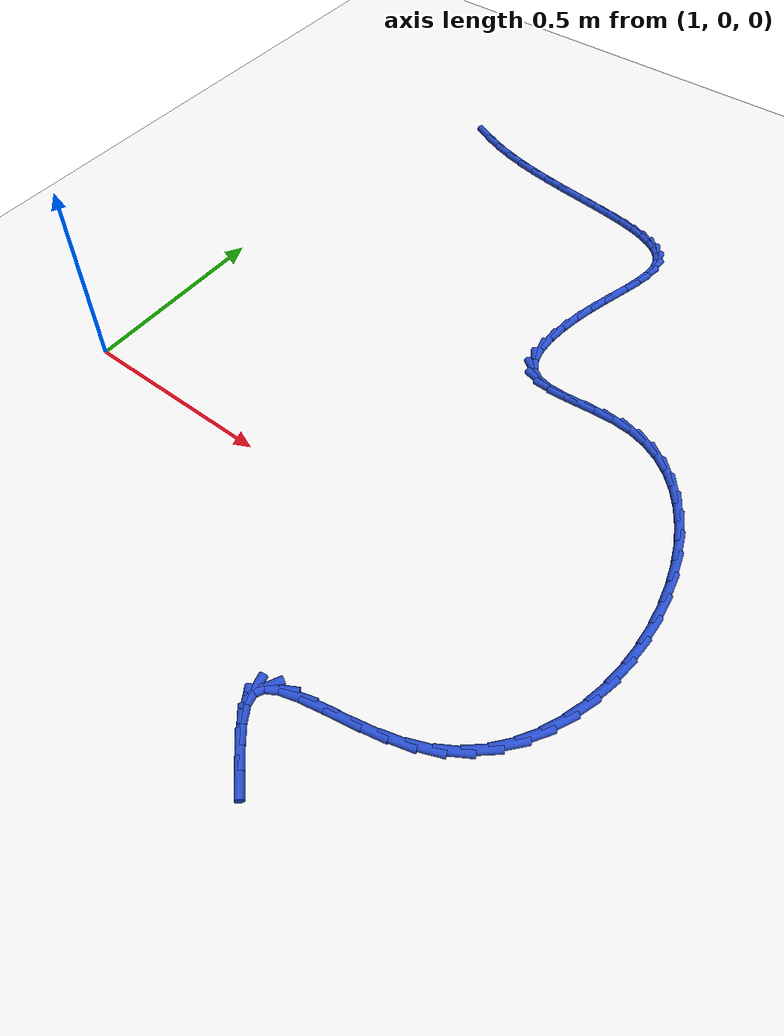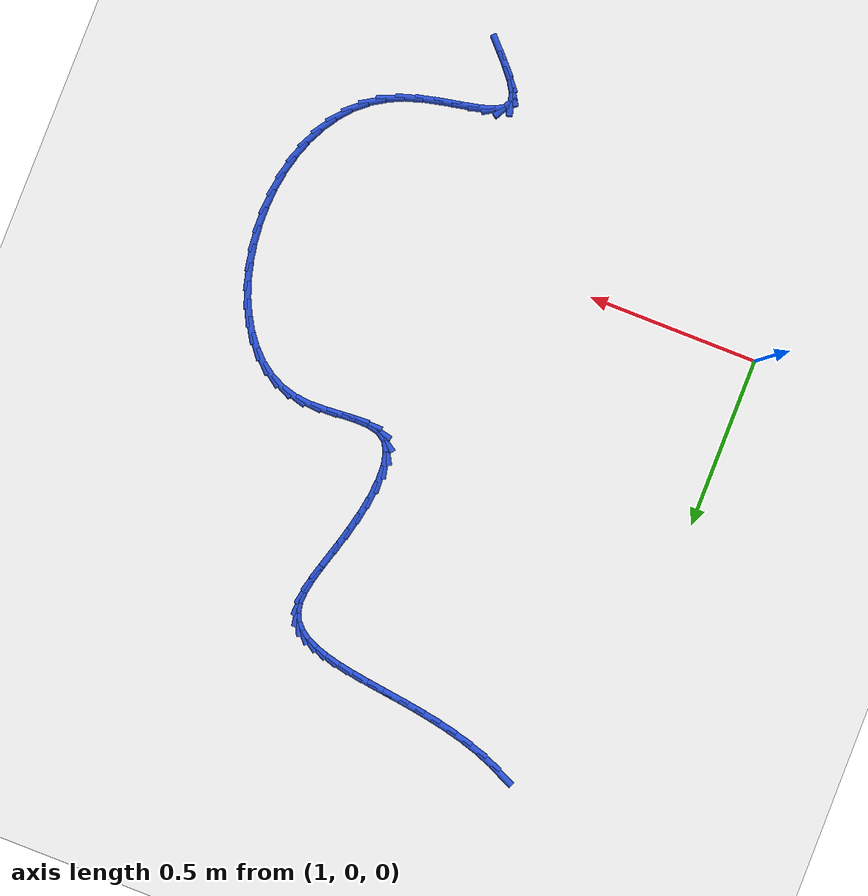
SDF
<sdf version="1.6">
 <world name="default">
  <model name="ground_plane">
   <static>1</static>
   <link name="link">
    <collision name="collision">
     <geometry><plane><normal>0 0 1</normal><size>100 100</size></plane></geometry>
     <surface><friction><ode><mu>100</mu><mu2>50</mu2></ode></friction></surface>
    </collision>
    <visual name="visual">
     <cast_shadows>0</cast_shadows>
     <geometry><plane><normal>0 0 1</normal><size>100 100</size></plane></geometry>
     <material>
      <script><uri>file://media/materials/scripts/gazebo.material</uri><name>Gazebo/WhiteGlow</name></script>
     </material>
    </visual>
   </link>
  </model>
  <model name="line">
   <link name="link_54">
    <pose>1.2487303190080101 1.3518922944200582 0.01 0 1.57 -0.43292029826082484</pose>
    <collision name="collision">
     <geometry><cylinder><radius>0.01</radius><length>0.08</length></cylinder></geometry>
    </collision>
    <visual name="visual">
     <material>
      <script><name>Gazebo/Blue</name><uri>file://media/materials/scripts/gazebo.material</uri></script>
     </material>
     <geometry><cylinder><radius>0.01</radius><length>0.08</length></cylinder></geometry>
    </visual>
   </link>
   <link name="link_55">
    <pose>1.2966925006008096 1.3297260778118267 0.01 0 1.57 -0.3538817943182508</pose>
    <collision name="collision">
     <geometry><cylinder><radius>0.01</radius><length>0.08</length></cylinder></geometry>
    </collision>
    <visual name="visual">
     <material>
      <script><name>Gazebo/Blue</name><uri>file://media/materials/scripts/gazebo.material</uri></script>
     </material>
     <geometry><cylinder><radius>0.01</radius><length>0.08</length></cylinder></geometry>
    </visual>
   </link>
   <link name="link_56">
    <pose>1.3466669813376237 1.3112638161789045 0.01 0 1.57 -0.2876853802730694</pose>
    <collision name="collision">
     <geometry><cylinder><radius>0.01</radius><length>0.08</length></cylinder></geometry>
    </collision>
    <visual name="visual">
     <material>
      <script><name>Gazebo/Blue</name><uri>file://media/materials/scripts/gazebo.material</uri></script>
     </material>
     <geometry><cylinder><radius>0.01</radius><length>0.08</length></cylinder></geometry>
    </visual>
   </link>
   <link name="link_57">
    <pose>1.3980941813938965 1.2960468273064274 0.01 0 1.57 -0.234372294279772</pose>
    <collision name="collision">
     <geometry><cylinder><radius>0.01</radius><length>0.08</length></cylinder></geometry>
    </collision>
    <visual name="visual">
     <material>
      <script><name>Gazebo/Blue</name><uri>file://media/materials/scripts/gazebo.material</uri></script>
     </material>
     <geometry><cylinder><radius>0.01</radius><length>0.08</length></cylinder></geometry>
    </visual>
   </link>
   <link name="link_58">
    <pose>1.450406076150996 1.2835568332873375 0.01 0 1.57 -0.1929256856500964</pose>
    <collision name="collision">
     <geometry><cylinder><radius>0.01</radius><length>0.08</length></cylinder></geometry>
    </collision>
    <visual name="visual">
     <material>
      <script><name>Gazebo/Blue</name><uri>file://media/materials/scripts/gazebo.material</uri></script>
     </material>
     <geometry><cylinder><radius>0.01</radius><length>0.08</length></cylinder></geometry>
    </visual>
   </link>
   <link name="link_59">
    <pose>1.5030346409902902 1.273275556214578 0.01 0 1.57 -0.16257110364568542</pose>
    <collision name="collision">
     <geometry><cylinder><radius>0.01</radius><length>0.08</length></cylinder></geometry>
    </collision>
    <visual name="visual">
     <material>
      <script><name>Gazebo/Blue</name><uri>file://media/materials/scripts/gazebo.material</uri></script>
     </material>
     <geometry><cylinder><radius>0.01</radius><length>0.08</length></cylinder></geometry>
    </visual>
   </link>
   <link name="link_60">
    <pose>1.5554118512931465 1.264684718181093 0.01 0 1.57 -0.14290949893314753</pose>
    <collision name="collision">
     <geometry><cylinder><radius>0.01</radius><length>0.08</length></cylinder></geometry>
    </collision>
    <visual name="visual">
     <material>
      <script><name>Gazebo/Blue</name><uri>file://media/materials/scripts/gazebo.material</uri></script>
     </material>
     <geometry><cylinder><radius>0.01</radius><length>0.08</length></cylinder></geometry>
    </visual>
   </link>
   <link name="link_61">
    <pose>1.6069696824409316 1.2572660412798244 0.01 0 1.57 -0.13402793256331727</pose>
    <collision name="collision">
     <geometry><cylinder><radius>0.01</radius><length>0.08</length></cylinder></geometry>
    </collision>
    <visual name="visual">
     <material>
      <script><name>Gazebo/Blue</name><uri>file://media/materials/scripts/gazebo.material</uri></script>
     </material>
     <geometry><cylinder><radius>0.01</radius><length>0.08</length></cylinder></geometry>
    </visual>
   </link>
   <link name="link_62">
    <pose>1.6571401098150127 1.2505012476037156 0.01 0 1.57 -0.13663554945352568</pose>
    <collision name="collision">
     <geometry><cylinder><radius>0.01</radius><length>0.08</length></cylinder></geometry>
    </collision>
    <visual name="visual">
     <material>
      <script><name>Gazebo/Blue</name><uri>file://media/materials/scripts/gazebo.material</uri></script>
     </material>
     <geometry><cylinder><radius>0.01</radius><length>0.08</length></cylinder></geometry>
    </visual>
   </link>
   <link name="link_63">
    <pose>1.705355108796759 1.2438720592457095 0.01 0 1.57 -0.15227285731366189</pose>
    <collision name="collision">
     <geometry><cylinder><radius>0.01</radius><length>0.08</length></cylinder></geometry>
    </collision>
    <visual name="visual">
     <material>
      <script><name>Gazebo/Blue</name><uri>file://media/materials/scripts/gazebo.material</uri></script>
     </material>
     <geometry><cylinder><radius>0.01</radius><length>0.08</length></cylinder></geometry>
    </visual>
   </link>
   <link name="link_64">
    <pose>1.7510466547675358 1.2368601982987497 0.01 0 1.57 -0.18365341744095673</pose>
    <collision name="collision">
     <geometry><cylinder><radius>0.01</radius><length>0.08</length></cylinder></geometry>
    </collision>
    <visual name="visual">
     <material>
      <script><name>Gazebo/Blue</name><uri>file://media/materials/scripts/gazebo.material</uri></script>
     </material>
     <geometry><cylinder><radius>0.01</radius><length>0.08</length></cylinder></geometry>
    </visual>
   </link>
   <link name="link_65">
    <pose>1.793646723108711 1.2289473868557783 0.01 0 1.57 -0.2352123937676256</pose>
    <collision name="collision">
     <geometry><cylinder><radius>0.01</radius><length>0.08</length></cylinder></geometry>
    </collision>
    <visual name="visual">
     <material>
      <script><name>Gazebo/Blue</name><uri>file://media/materials/scripts/gazebo.material</uri></script>
     </material>
     <geometry><cylinder><radius>0.01</radius><length>0.08</length></cylinder></geometry>
    </visual>
   </link>
   <link name="link_66">
    <pose>1.8325872892016535 1.2196153470097393 0.01 0 1.57 -0.31391420819106536</pose>
    <collision name="collision">
     <geometry><cylinder><radius>0.01</radius><length>0.08</length></cylinder></geometry>
    </collision>
    <visual name="visual">
     <material>
      <script><name>Gazebo/Blue</name><uri>file://media/materials/scripts/gazebo.material</uri></script>
     </material>
     <geometry><cylinder><radius>0.01</radius><length>0.08</length></cylinder></geometry>
    </visual>
   </link>
   <link name="link_67">
    <pose>1.8673003284277283 1.2083458008535752 0.01 0 1.57 -0.43012541419790107</pose>
    <collision name="collision">
     <geometry><cylinder><radius>0.01</radius><length>0.08</length></cylinder></geometry>
    </collision>
    <visual name="visual">
     <material>
      <script><name>Gazebo/Blue</name><uri>file://media/materials/scripts/gazebo.material</uri></script>
     </material>
     <geometry><cylinder><radius>0.01</radius><length>0.08</length></cylinder></geometry>
    </visual>
   </link>
   <link name="link_68">
    <pose>1.897217816168304 1.194620470480229 0.01 0 1.57 -0.5972527545270093</pose>
    <collision name="collision">
     <geometry><cylinder><radius>0.01</radius><length>0.08</length></cylinder></geometry>
    </collision>
    <visual name="visual">
     <material>
      <script><name>Gazebo/Blue</name><uri>file://media/materials/scripts/gazebo.material</uri></script>
     </material>
     <geometry><cylinder><radius>0.01</radius><length>0.08</length></cylinder></geometry>
    </visual>
   </link>
   <link name="link_69">
    <pose>1.9217717278047488 1.1779210779826441 0.01 0 1.57 -0.8258105247849534</pose>
    <collision name="collision">
     <geometry><cylinder><radius>0.01</radius><length>0.08</length></cylinder></geometry>
    </collision>
    <visual name="visual">
     <material>
      <script><name>Gazebo/Blue</name><uri>file://media/materials/scripts/gazebo.material</uri></script>
     </material>
     <geometry><cylinder><radius>0.01</radius><length>0.08</length></cylinder></geometry>
    </visual>
   </link>
   <link name="link_70">
    <pose>1.9403940387184286 1.1577293454537632 0.01 0 1.57 -1.1064379540791758</pose>
    <collision name="collision">
     <geometry><cylinder><radius>0.01</radius><length>0.08</length></cylinder></geometry>
    </collision>
    <visual name="visual">
     <material>
      <script><name>Gazebo/Blue</name><uri>file://media/materials/scripts/gazebo.material</uri></script>
     </material>
     <geometry><cylinder><radius>0.01</radius><length>0.08</length></cylinder></geometry>
    </visual>
   </link>
   <link name="link_71">
    <pose>1.9525167242907115 1.1335269949865294 0.01 0 1.57 -1.3958731332271956</pose>
    <collision name="collision">
     <geometry><cylinder><radius>0.01</radius><length>0.08</length></cylinder></geometry>
    </collision>
    <visual name="visual">
     <material>
      <script><name>Gazebo/Blue</name><uri>file://media/materials/scripts/gazebo.material</uri></script>
     </material>
     <geometry><cylinder><radius>0.01</radius><length>0.08</length></cylinder></geometry>
    </visual>
   </link>
   <link name="link_72">
    <pose>1.9575926544718563 1.1048055152909322 0.01 0 1.57 1.5206338667820836</pose>
    <collision name="collision">
     <geometry><cylinder><radius>0.01</radius><length>0.08</length></cylinder></geometry>
    </collision>
    <visual name="visual">
     <material>
      <script><name>Gazebo/Blue</name><uri>file://media/materials/scripts/gazebo.material</uri></script>
     </material>
     <geometry><cylinder><radius>0.01</radius><length>0.08</length></cylinder></geometry>
    </visual>
   </link>
   <link name="link_73">
    <pose>1.9559180857748728 1.0714506139585798 0.01 0 1.57 1.386264278225284</pose>
    <collision name="collision">
     <geometry><cylinder><radius>0.01</radius><length>0.08</length></cylinder></geometry>
    </collision>
    <visual name="visual">
     <material>
      <script><name>Gazebo/Blue</name><uri>file://media/materials/scripts/gazebo.material</uri></script>
     </material>
     <geometry><cylinder><radius>0.01</radius><length>0.08</length></cylinder></geometry>
    </visual>
   </link>
   <link name="link_74">
    <pose>1.9489032090766314 1.0338686779213908 0.01 0 1.57 1.3138650329889607</pose>
    <collision name="collision">
     <geometry><cylinder><radius>0.01</radius><length>0.08</length></cylinder></geometry>
    </collision>
    <visual name="visual">
     <material>
      <script><name>Gazebo/Blue</name><uri>file://media/materials/scripts/gazebo.material</uri></script>
     </material>
     <geometry><cylinder><radius>0.01</radius><length>0.08</length></cylinder></geometry>
    </visual>
   </link>
   <link name="link_75">
    <pose>1.9380345358386093 0.9925017681625857 0.01 0 1.57 1.2829752232633198</pose>
    <collision name="collision">
     <geometry><cylinder><radius>0.01</radius><length>0.08</length></cylinder></geometry>
    </collision>
    <visual name="visual">
     <material>
      <script><name>Gazebo/Blue</name><uri>file://media/materials/scripts/gazebo.material</uri></script>
     </material>
     <geometry><cylinder><radius>0.01</radius><length>0.08</length></cylinder></geometry>
    </visual>
   </link>
   <link name="link_76">
    <pose>1.924798577522284 0.9477919456653863 0.01 0 1.57 1.2825504020763367</pose>
    <collision name="collision">
     <geometry><cylinder><radius>0.01</radius><length>0.08</length></cylinder></geometry>
    </collision>
    <visual name="visual">
     <material>
      <script><name>Gazebo/Blue</name><uri>file://media/materials/scripts/gazebo.material</uri></script>
     </material>
     <geometry><cylinder><radius>0.01</radius><length>0.08</length></cylinder></geometry>
    </visual>
   </link>
   <link name="link_77">
    <pose>1.9106818455891352 0.9001812714130155 0.01 0 1.57 1.3070906704318568</pose>
    <collision name="collision">
     <geometry><cylinder><radius>0.01</radius><length>0.08</length></cylinder></geometry>
    </collision>
    <visual name="visual">
     <material>
      <script><name>Gazebo/Blue</name><uri>file://media/materials/scripts/gazebo.material</uri></script>
     </material>
     <geometry><cylinder><radius>0.01</radius><length>0.08</length></cylinder></geometry>
    </visual>
   </link>
   <link name="link_78">
    <pose>1.8971677981541775 0.8501280150739561 0.01 0 1.57 1.349726772207351</pose>
    <collision name="collision">
     <geometry><cylinder><radius>0.01</radius><length>0.08</length></cylinder></geometry>
    </collision>
    <visual name="visual">
     <material>
      <script><name>Gazebo/Blue</name><uri>file://media/materials/scripts/gazebo.material</uri></script>
     </material>
     <geometry><cylinder><radius>0.01</radius><length>0.08</length></cylinder></geometry>
    </visual>
   </link>
   <link name="link_79">
    <pose>1.8856180717497217 0.7987371360118116 0.01 0 1.57 1.4071512008913252</pose>
    <collision name="collision">
     <geometry><cylinder><radius>0.01</radius><length>0.08</length></cylinder></geometry>
    </collision>
    <visual name="visual">
     <material>
      <script><name>Gazebo/Blue</name><uri>file://media/materials/scripts/gazebo.material</uri></script>
     </material>
     <geometry><cylinder><radius>0.01</radius><length>0.08</length></cylinder></geometry>
    </visual>
   </link>
   <link name="link_80">
    <pose>1.8772342217308982 0.7479633842870775 0.01 0 1.57 1.4873395987821931</pose>
    <collision name="collision">
     <geometry><cylinder><radius>0.01</radius><length>0.08</length></cylinder></geometry>
    </collision>
    <visual name="visual">
     <material>
      <script><name>Gazebo/Blue</name><uri>file://media/materials/scripts/gazebo.material</uri></script>
     </material>
     <geometry><cylinder><radius>0.01</radius><length>0.08</length></cylinder></geometry>
    </visual>
   </link>
   <link name="link_81">
    <pose>1.8732069188060938 0.6998192910916903 0.01 0 1.57 -1.535871490479705</pose>
    <collision name="collision">
     <geometry><cylinder><radius>0.01</radius><length>0.08</length></cylinder></geometry>
    </collision>
    <visual name="visual">
     <material>
      <script><name>Gazebo/Blue</name><uri>file://media/materials/scripts/gazebo.material</uri></script>
     </material>
     <geometry><cylinder><radius>0.01</radius><length>0.08</length></cylinder></geometry>
    </visual>
   </link>
   <link name="link_82">
    <pose>1.8747268336836975 0.6563173876175861 0.01 0 1.57 -1.3503296436587149</pose>
    <collision name="collision">
     <geometry><cylinder><radius>0.01</radius><length>0.08</length></cylinder></geometry>
    </collision>
    <visual name="visual">
     <material>
      <script><name>Gazebo/Blue</name><uri>file://media/materials/scripts/gazebo.material</uri></script>
     </material>
     <geometry><cylinder><radius>0.01</radius><length>0.08</length></cylinder></geometry>
    </visual>
   </link>
   <link name="link_83">
    <pose>1.8829846370720973 0.619470205056703 0.01 0 1.57 -1.0494181347629754</pose>
    <collision name="collision">
     <geometry><cylinder><radius>0.01</radius><length>0.08</length></cylinder></geometry>
    </collision>
    <visual name="visual">
     <material>
      <script><name>Gazebo/Blue</name><uri>file://media/materials/scripts/gazebo.material</uri></script>
     </material>
     <geometry><cylinder><radius>0.01</radius><length>0.08</length></cylinder></geometry>
    </visual>
   </link>
   <link name="link_84">
    <pose>1.8991709996796804 0.5912902746009776 0.01 0 1.57 -0.610134471287273</pose>
    <collision name="collision">
     <geometry><cylinder><radius>0.01</radius><length>0.08</length></cylinder></geometry>
    </collision>
    <visual name="visual">
     <material>
      <script><name>Gazebo/Blue</name><uri>file://media/materials/scripts/gazebo.material</uri></script>
     </material>
     <geometry><cylinder><radius>0.01</radius><length>0.08</length></cylinder></geometry>
    </visual>
   </link>
   <link name="link_85">
    <pose>1.9243930709580304 0.573657044343745 0.01 0 1.57 -0.22658349251382193</pose>
    <collision name="collision">
     <geometry><cylinder><radius>0.01</radius><length>0.08</length></cylinder></geometry>
    </collision>
    <visual name="visual">
     <material>
      <script><name>Gazebo/Blue</name><uri>file://media/materials/scripts/gazebo.material</uri></script>
     </material>
     <geometry><cylinder><radius>0.01</radius><length>0.08</length></cylinder></geometry>
    </visual>
   </link>
   <link name="link_86">
    <pose>1.9581428024259642 0.5658762996490203 0.01 0 1.57 -0.023599827514793035</pose>
    <collision name="collision">
     <geometry><cylinder><radius>0.01</radius><length>0.08</length></cylinder></geometry>
    </collision>
    <visual name="visual">
     <material>
      <script><name>Gazebo/Blue</name><uri>file://media/materials/scripts/gazebo.material</uri></script>
     </material>
     <geometry><cylinder><radius>0.01</radius><length>0.08</length></cylinder></geometry>
    </visual>
   </link>
   <link name="link_87">
    <pose>1.9984505211875758 0.5649248677982601 0.01 0 1.57 0.061708217787412874</pose>
    <collision name="collision">
     <geometry><cylinder><radius>0.01</radius><length>0.08</length></cylinder></geometry>
    </collision>
    <visual name="visual">
     <material>
      <script><name>Gazebo/Blue</name><uri>file://media/materials/scripts/gazebo.material</uri></script>
     </material>
     <geometry><cylinder><radius>0.01</radius><length>0.08</length></cylinder></geometry>
    </visual>
   </link>
   <link name="link_88">
    <pose>2.0432938439350776 0.5676955870956237 0.01 0 1.57 0.07137256164304281</pose>
    <collision name="collision">
     <geometry><cylinder><radius>0.01</radius><length>0.08</length></cylinder></geometry>
    </collision>
    <visual name="visual">
     <material>
      <script><name>Gazebo/Blue</name><uri>file://media/materials/scripts/gazebo.material</uri></script>
     </material>
     <geometry><cylinder><radius>0.01</radius><length>0.08</length></cylinder></geometry>
    </visual>
   </link>
   <link name="link_89">
    <pose>2.0906503873606814 0.5710812958452709 0.01 0 1.57 0.018672550947671052</pose>
    <collision name="collision">
     <geometry><cylinder><radius>0.01</radius><length>0.08</length></cylinder></geometry>
    </collision>
    <visual name="visual">
     <material>
      <script><name>Gazebo/Blue</name><uri>file://media/materials/scripts/gazebo.material</uri></script>
     </material>
     <geometry><cylinder><radius>0.01</radius><length>0.08</length></cylinder></geometry>
    </visual>
   </link>
   <link name="link_90">
    <pose>2.1384977681566 0.5719748323513607 0.01 0 1.57 -0.10122078092173535</pose>
    <collision name="collision">
     <geometry><cylinder><radius>0.01</radius><length>0.08</length></cylinder></geometry>
    </collision>
    <visual name="visual">
     <material>
      <script><name>Gazebo/Blue</name><uri>file://media/materials/scripts/gazebo.material</uri></script>
     </material>
     <geometry><cylinder><radius>0.01</radius><length>0.08</length></cylinder></geometry>
    </visual>
   </link>
   <link name="link_91">
    <pose>2.1848143654644536 0.5672705530902118 0.01 0 1.57 -0.28121613743882695</pose>
    <collision name="collision">
     <geometry><cylinder><radius>0.01</radius><length>0.08</length></cylinder></geometry>
    </collision>
    <visual name="visual">
     <material>
      <script><name>Gazebo/Blue</name><uri>file://media/materials/scripts/gazebo.material</uri></script>
     </material>
     <geometry><cylinder><radius>0.01</radius><length>0.08</length></cylinder></geometry>
    </visual>
   </link>
   <link name="link_92">
    <pose>2.2280409970198556 0.5547836118931139 0.01 0 1.57 -0.4648801955607489</pose>
    <collision name="collision">
     <geometry><cylinder><radius>0.01</radius><length>0.08</length></cylinder></geometry>
    </collision>
    <visual name="visual">
     <material>
      <script><name>Gazebo/Blue</name><uri>file://media/materials/scripts/gazebo.material</uri></script>
     </material>
     <geometry><cylinder><radius>0.01</radius><length>0.08</length></cylinder></geometry>
    </visual>
   </link>
   <link name="link_93">
    <pose>2.267864602935161 0.5348104135150096 0.01 0 1.57 -0.6348604089773715</pose>
    <collision name="collision">
     <geometry><cylinder><radius>0.01</radius><length>0.08</length></cylinder></geometry>
    </collision>
    <visual name="visual">
     <material>
      <script><name>Gazebo/Blue</name><uri>file://media/materials/scripts/gazebo.material</uri></script>
     </material>
     <geometry><cylinder><radius>0.01</radius><length>0.08</length></cylinder></geometry>
    </visual>
   </link>
   <link name="link_94">
    <pose>2.304179903333814 0.508061089608018 0.01 0 1.57 -0.7871321043228083</pose>
    <collision name="collision">
     <geometry><cylinder><radius>0.01</radius><length>0.08</length></cylinder></geometry>
    </collision>
    <visual name="visual">
     <material>
      <script><name>Gazebo/Blue</name><uri>file://media/materials/scripts/gazebo.material</uri></script>
     </material>
     <geometry><cylinder><radius>0.01</radius><length>0.08</length></cylinder></geometry>
    </visual>
   </link>
   <link name="link_95">
    <pose>2.3368816183392616 0.47524577182425815 0.01 0 1.57 -0.9213785004410212</pose>
    <collision name="collision">
     <geometry><cylinder><radius>0.01</radius><length>0.08</length></cylinder></geometry>
    </collision>
    <visual name="visual">
     <material>
      <script><name>Gazebo/Blue</name><uri>file://media/materials/scripts/gazebo.material</uri></script>
     </material>
     <geometry><cylinder><radius>0.01</radius><length>0.08</length></cylinder></geometry>
    </visual>
   </link>
   <link name="link_96">
    <pose>2.365864468074945 0.43707459181585023 0.01 0 1.57 -1.0395532600536201</pose>
    <collision name="collision">
     <geometry><cylinder><radius>0.01</radius><length>0.08</length></cylinder></geometry>
    </collision>
    <visual name="visual">
     <material>
      <script><name>Gazebo/Blue</name><uri>file://media/materials/scripts/gazebo.material</uri></script>
     </material>
     <geometry><cylinder><radius>0.01</radius><length>0.08</length></cylinder></geometry>
    </visual>
   </link>
   <link name="link_97">
    <pose>2.391023172664312 0.3942576812349134 0.01 0 1.57 -1.1445564270917683</pose>
    <collision name="collision">
     <geometry><cylinder><radius>0.01</radius><length>0.08</length></cylinder></geometry>
    </collision>
    <visual name="visual">
     <material>
      <script><name>Gazebo/Blue</name><uri>file://media/materials/scripts/gazebo.material</uri></script>
     </material>
     <geometry><cylinder><radius>0.01</radius><length>0.08</length></cylinder></geometry>
    </visual>
   </link>
   <link name="link_98">
    <pose>2.412252452230807 0.3475051717335665 0.01 0 1.57 -1.2394382082955875</pose>
    <collision name="collision">
     <geometry><cylinder><radius>0.01</radius><length>0.08</length></cylinder></geometry>
    </collision>
    <visual name="visual">
     <material>
      <script><name>Gazebo/Blue</name><uri>file://media/materials/scripts/gazebo.material</uri></script>
     </material>
     <geometry><cylinder><radius>0.01</radius><length>0.08</length></cylinder></geometry>
    </visual>
   </link>
   <link name="link_99">
    <pose>2.429447026897874 0.29752719496393004 0.01 0 1.57 -1.3270504814313613</pose>
    <collision name="collision">
     <geometry><cylinder><radius>0.01</radius><length>0.08</length></cylinder></geometry>
    </collision>
    <visual name="visual">
     <material>
      <script><name>Gazebo/Blue</name><uri>file://media/materials/scripts/gazebo.material</uri></script>
     </material>
     <geometry><cylinder><radius>0.01</radius><length>0.08</length></cylinder></geometry>
    </visual>
   </link>
   <link name="link_100">
    <pose>2.442501616788959 0.24503388257812297 0.01 0 1.57 -1.4099589289849592</pose>
    <collision name="collision">
     <geometry><cylinder><radius>0.01</radius><length>0.08</length></cylinder></geometry>
    </collision>
    <visual name="visual">
     <material>
      <script><name>Gazebo/Blue</name><uri>file://media/materials/scripts/gazebo.material</uri></script>
     </material>
     <geometry><cylinder><radius>0.01</radius><length>0.08</length></cylinder></geometry>
    </visual>
   </link>
   <link name="link_101">
    <pose>2.451310942027505 0.19073536622826384 0.01 0 1.57 -1.4904767720816252</pose>
    <collision name="collision">
     <geometry><cylinder><radius>0.01</radius><length>0.08</length></cylinder></geometry>
    </collision>
    <visual name="visual">
     <material>
      <script><name>Gazebo/Blue</name><uri>file://media/materials/scripts/gazebo.material</uri></script>
     </material>
     <geometry><cylinder><radius>0.01</radius><length>0.08</length></cylinder></geometry>
    </visual>
   </link>
   <link name="link_102">
    <pose>2.4557697227369593 0.1353417775664735 0.01 0 1.57 -1.5707433260464196</pose>
    <collision name="collision">
     <geometry><cylinder><radius>0.01</radius><length>0.08</length></cylinder></geometry>
    </collision>
    <visual name="visual">
     <material>
      <script><name>Gazebo/Blue</name><uri>file://media/materials/scripts/gazebo.material</uri></script>
     </material>
     <geometry><cylinder><radius>0.01</radius><length>0.08</length></cylinder></geometry>
    </visual>
   </link>
   <link name="link_103">
    <pose>2.455772679040765 0.07956324824487088 0.01 0 1.57 1.4887828028007382</pose>
    <collision name="collision">
     <geometry><cylinder><radius>0.01</radius><length>0.08</length></cylinder></geometry>
    </collision>
    <visual name="visual">
     <material>
      <script><name>Gazebo/Blue</name><uri>file://media/materials/scripts/gazebo.material</uri></script>
     </material>
     <geometry><cylinder><radius>0.01</radius><length>0.08</length></cylinder></geometry>
    </visual>
   </link>
   <link name="link_104">
    <pose>2.4512145310623676 0.024109909915575177 0.01 0 1.57 1.402880045957067</pose>
    <collision name="collision">
     <geometry><cylinder><radius>0.01</radius><length>0.08</length></cylinder></geometry>
    </collision>
    <visual name="visual">
     <material>
      <script><name>Gazebo/Blue</name><uri>file://media/materials/scripts/gazebo.material</uri></script>
     </material>
     <geometry><cylinder><radius>0.01</radius><length>0.08</length></cylinder></geometry>
    </visual>
   </link>
   <link name="link_105">
    <pose>2.441989998925212 -0.030308105769294054 0.01 0 1.57 1.3110771952277018</pose>
    <collision name="collision">
     <geometry><cylinder><radius>0.01</radius><length>0.08</length></cylinder></geometry>
    </collision>
    <visual name="visual">
     <material>
      <script><name>Gazebo/Blue</name><uri>file://media/materials/scripts/gazebo.material</uri></script>
     </material>
     <geometry><cylinder><radius>0.01</radius><length>0.08</length></cylinder></geometry>
    </visual>
   </link>
   <link name="link_106">
    <pose>2.4279938027527423 -0.08298066715761857 0.01 0 1.57 1.2112965401552398</pose>
    <collision name="collision">
     <geometry><cylinder><radius>0.01</radius><length>0.08</length></cylinder></geometry>
    </collision>
    <visual name="visual">
     <material>
      <script><name>Gazebo/Blue</name><uri>file://media/materials/scripts/gazebo.material</uri></script>
     </material>
     <geometry><cylinder><radius>0.01</radius><length>0.08</length></cylinder></geometry>
    </visual>
   </link>
   <link name="link_107">
    <pose>2.4091206626684047 -0.13319764259727657 0.01 0 1.57 1.101558052393421</pose>
    <collision name="collision">
     <geometry><cylinder><radius>0.01</radius><length>0.08</length></cylinder></geometry>
    </collision>
    <visual name="visual">
     <material>
      <script><name>Gazebo/Blue</name><uri>file://media/materials/scripts/gazebo.material</uri></script>
     </material>
     <geometry><cylinder><radius>0.01</radius><length>0.08</length></cylinder></geometry>
    </visual>
   </link>
   <link name="link_108">
    <pose>2.3852652987956433 -0.18024890043614983 0.01 0 1.57 0.9802443427058659</pose>
    <collision name="collision">
     <geometry><cylinder><radius>0.01</radius><length>0.08</length></cylinder></geometry>
    </collision>
    <visual name="visual">
     <material>
      <script><name>Gazebo/Blue</name><uri>file://media/materials/scripts/gazebo.material</uri></script>
     </material>
     <geometry><cylinder><radius>0.01</radius><length>0.08</length></cylinder></geometry>
    </visual>
   </link>
   <link name="link_109">
    <pose>2.3563224312579027 -0.22342430902211896 0.01 0 1.57 0.8465630492890285</pose>
    <collision name="collision">
     <geometry><cylinder><radius>0.01</radius><length>0.08</length></cylinder></geometry>
    </collision>
    <visual name="visual">
     <material>
      <script><name>Gazebo/Blue</name><uri>file://media/materials/scripts/gazebo.material</uri></script>
     </material>
     <geometry><cylinder><radius>0.01</radius><length>0.08</length></cylinder></geometry>
    </visual>
   </link>
   <link name="link_110">
    <pose>2.3221867801786287 -0.2620137367030645 0.01 0 1.57 0.7011671591894831</pose>
    <collision name="collision">
     <geometry><cylinder><radius>0.01</radius><length>0.08</length></cylinder></geometry>
    </collision>
    <visual name="visual">
     <material>
      <script><name>Gazebo/Blue</name><uri>file://media/materials/scripts/gazebo.material</uri></script>
     </material>
     <geometry><cylinder><radius>0.01</radius><length>0.08</length></cylinder></geometry>
    </visual>
   </link>
   <link name="link_111">
    <pose>2.2827530656812653 -0.295307051826867 0.01 0 1.57 0.546706635829528</pose>
    <collision name="collision">
     <geometry><cylinder><radius>0.01</radius><length>0.08</length></cylinder></geometry>
    </collision>
    <visual name="visual">
     <material>
      <script><name>Gazebo/Blue</name><uri>file://media/materials/scripts/gazebo.material</uri></script>
     </material>
     <geometry><cylinder><radius>0.01</radius><length>0.08</length></cylinder></geometry>
    </visual>
   </link>
   <link name="link_112">
    <pose>2.2379160078892566 -0.32259412274140764 0.01 0 1.57 0.39386878054223207</pose>
    <collision name="collision">
     <geometry><cylinder><radius>0.01</radius><length>0.08</length></cylinder></geometry>
    </collision>
    <visual name="visual">
     <material>
      <script><name>Gazebo/Blue</name><uri>file://media/materials/scripts/gazebo.material</uri></script>
     </material>
     <geometry><cylinder><radius>0.01</radius><length>0.08</length></cylinder></geometry>
    </visual>
   </link>
   <link name="link_113">
    <pose>2.1878559696519555 -0.3433983044450018 0.01 0 1.57 0.2822645766547095</pose>
    <collision name="collision">
     <geometry><cylinder><radius>0.01</radius><length>0.08</length></cylinder></geometry>
    </collision>
    <visual name="visual">
     <material>
      <script><name>Gazebo/Blue</name><uri>file://media/materials/scripts/gazebo.material</uri></script>
     </material>
     <geometry><cylinder><radius>0.01</radius><length>0.08</length></cylinder></geometry>
    </visual>
   </link>
   <link name="link_114">
    <pose>2.134681722439186 -0.3588192485772941 0.01 0 1.57 0.21736041187330007</pose>
    <collision name="collision">
     <geometry><cylinder><radius>0.01</radius><length>0.08</length></cylinder></geometry>
    </collision>
    <visual name="visual">
     <material>
      <script><name>Gazebo/Blue</name><uri>file://media/materials/scripts/gazebo.material</uri></script>
     </material>
     <geometry><cylinder><radius>0.01</radius><length>0.08</length></cylinder></geometry>
    </visual>
   </link>
   <link name="link_115">
    <pose>2.081299716860679 -0.3706086360915022 0.01 0 1.57 0.19313130574027795</pose>
    <collision name="collision">
     <geometry><cylinder><radius>0.01</radius><length>0.08</length></cylinder></geometry>
    </collision>
    <visual name="visual">
     <material>
      <script><name>Gazebo/Blue</name><uri>file://media/materials/scripts/gazebo.material</uri></script>
     </material>
     <geometry><cylinder><radius>0.01</radius><length>0.08</length></cylinder></geometry>
    </visual>
   </link>
   <link name="link_116">
    <pose>2.0306189400128427 -0.38052022128535296 0.01 0 1.57 0.2138401061366393</pose>
    <collision name="collision">
     <geometry><cylinder><radius>0.01</radius><length>0.08</length></cylinder></geometry>
    </collision>
    <visual name="visual">
     <material>
      <script><name>Gazebo/Blue</name><uri>file://media/materials/scripts/gazebo.material</uri></script>
     </material>
     <geometry><cylinder><radius>0.01</radius><length>0.08</length></cylinder></geometry>
    </visual>
   </link>
   <link name="link_117">
    <pose>1.9855483789920831 -0.39030775845657334 0.01 0 1.57 0.302758845095009</pose>
    <collision name="collision">
     <geometry><cylinder><radius>0.01</radius><length>0.08</length></cylinder></geometry>
    </collision>
    <visual name="visual">
     <material>
      <script><name>Gazebo/Blue</name><uri>file://media/materials/scripts/gazebo.material</uri></script>
     </material>
     <geometry><cylinder><radius>0.01</radius><length>0.08</length></cylinder></geometry>
    </visual>
   </link>
   <link name="link_118">
    <pose>1.9489970208948069 -0.4017250019028899 0.01 0 1.57 0.5323853207844728</pose>
    <collision name="collision">
     <geometry><cylinder><radius>0.01</radius><length>0.08</length></cylinder></geometry>
    </collision>
    <visual name="visual">
     <material>
      <script><name>Gazebo/Blue</name><uri>file://media/materials/scripts/gazebo.material</uri></script>
     </material>
     <geometry><cylinder><radius>0.01</radius><length>0.08</length></cylinder></geometry>
    </visual>
   </link>
   <link name="link_119">
    <pose>1.9238738528174204 -0.4165257059220301 0.01 0 1.57 1.0749055721081764</pose>
    <collision name="collision">
     <geometry><cylinder><radius>0.01</radius><length>0.08</length></cylinder></geometry>
    </collision>
    <visual name="visual">
     <material>
      <script><name>Gazebo/Blue</name><uri>file://media/materials/scripts/gazebo.material</uri></script>
     </material>
     <geometry><cylinder><radius>0.01</radius><length>0.08</length></cylinder></geometry>
    </visual>
   </link>
   <link name="link_120">
    <pose>1.9130878618563307 -0.43646362481171985 0.01 0 1.57 -1.356288596440401</pose>
    <collision name="collision">
     <geometry><cylinder><radius>0.01</radius><length>0.08</length></cylinder></geometry>
    </collision>
    <visual name="visual">
     <material>
      <script><name>Gazebo/Blue</name><uri>file://media/materials/scripts/gazebo.material</uri></script>
     </material>
     <geometry><cylinder><radius>0.01</radius><length>0.08</length></cylinder></geometry>
    </visual>
   </link>
   <link name="link_121">
    <pose>1.9188590185355647 -0.462953890569185 0.01 0 1.57 -1.017232278315443</pose>
    <collision name="collision">
     <geometry><cylinder><radius>0.01</radius><length>0.08</length></cylinder></geometry>
    </collision>
    <visual name="visual">
     <material>
      <script><name>Gazebo/Blue</name><uri>file://media/materials/scripts/gazebo.material</uri></script>
     </material>
     <geometry><cylinder><radius>0.01</radius><length>0.08</length></cylinder></geometry>
    </visual>
   </link>
   <link name="link_122">
    <pose>1.9387356713860406 -0.4951157319437599 0.01 0 1.57 -0.8827968796192208</pose>
    <collision name="collision">
     <geometry><cylinder><radius>0.01</radius><length>0.08</length></cylinder></geometry>
    </collision>
    <visual name="visual">
     <material>
      <script><name>Gazebo/Blue</name><uri>file://media/materials/scripts/gazebo.material</uri></script>
     </material>
     <geometry><cylinder><radius>0.01</radius><length>0.08</length></cylinder></geometry>
    </visual>
   </link>
   <link name="link_123">
    <pose>1.9683263044670136 -0.5311150169146791 0.01 0 1.57 -0.8277929587562246</pose>
    <collision name="collision">
     <geometry><cylinder><radius>0.01</radius><length>0.08</length></cylinder></geometry>
    </collision>
    <visual name="visual">
     <material>
      <script><name>Gazebo/Blue</name><uri>file://media/materials/scripts/gazebo.material</uri></script>
     </material>
     <geometry><cylinder><radius>0.01</radius><length>0.08</length></cylinder></geometry>
    </visual>
   </link>
   <link name="link_124">
    <pose>2.0032331059351827 -0.5691145192932092 0.01 0 1.57 -0.8169785482111185</pose>
    <collision name="collision">
     <geometry><cylinder><radius>0.01</radius><length>0.08</length></cylinder></geometry>
    </collision>
    <visual name="visual">
     <material>
      <script><name>Gazebo/Blue</name><uri>file://media/materials/scripts/gazebo.material</uri></script>
     </material>
     <geometry><cylinder><radius>0.01</radius><length>0.08</length></cylinder></geometry>
    </visual>
   </link>
  </model>
 </world>
</sdf>
